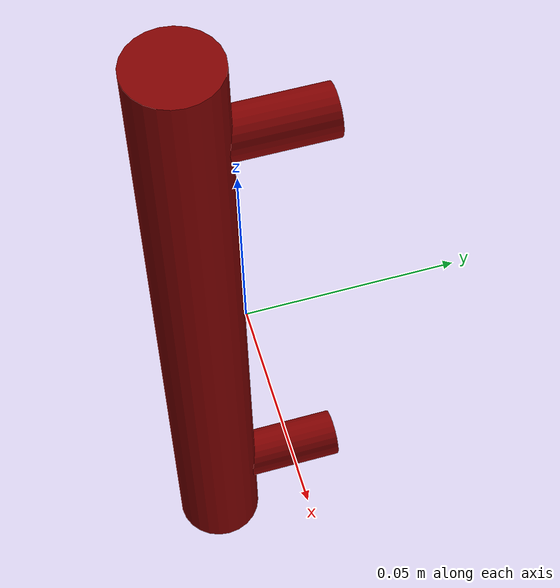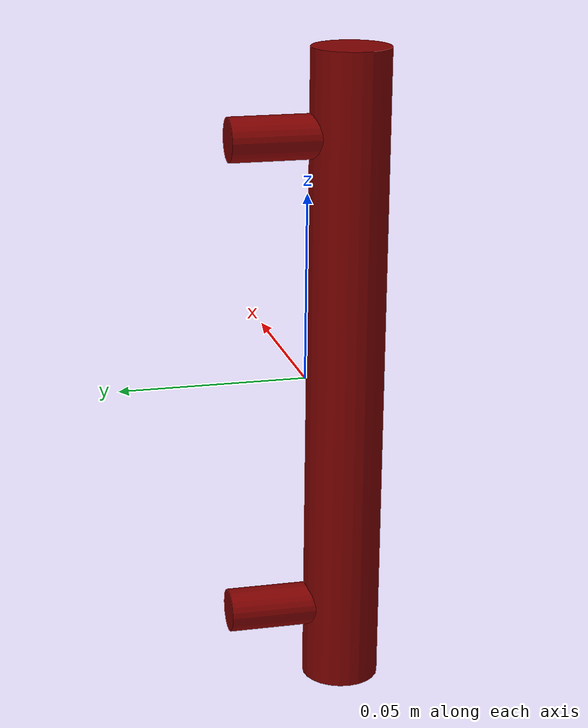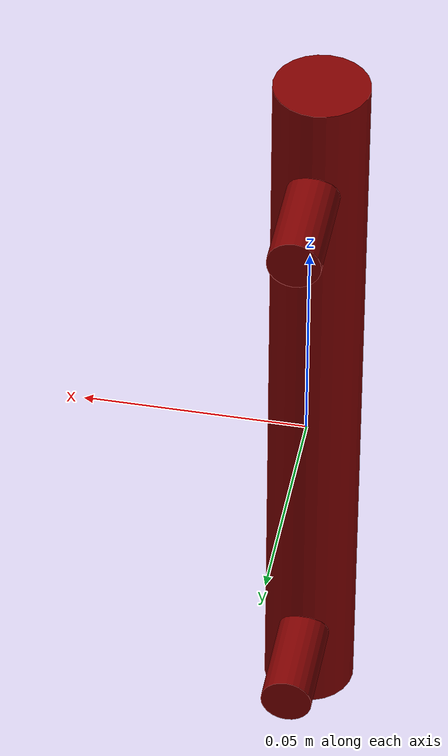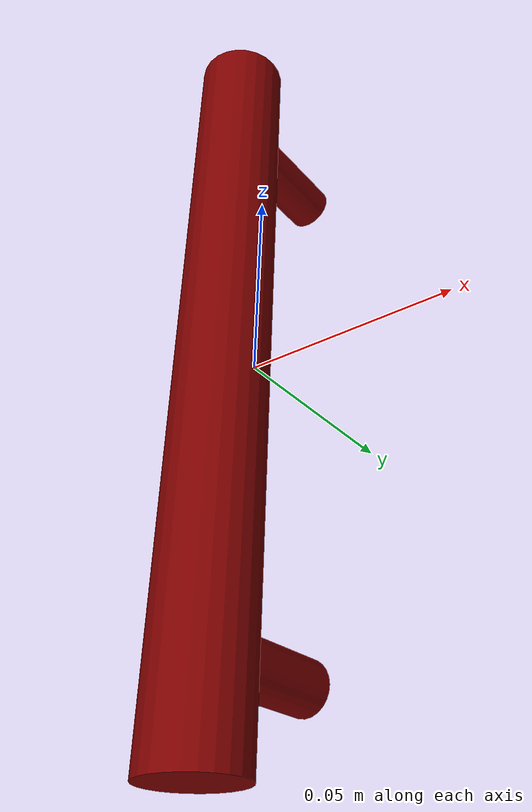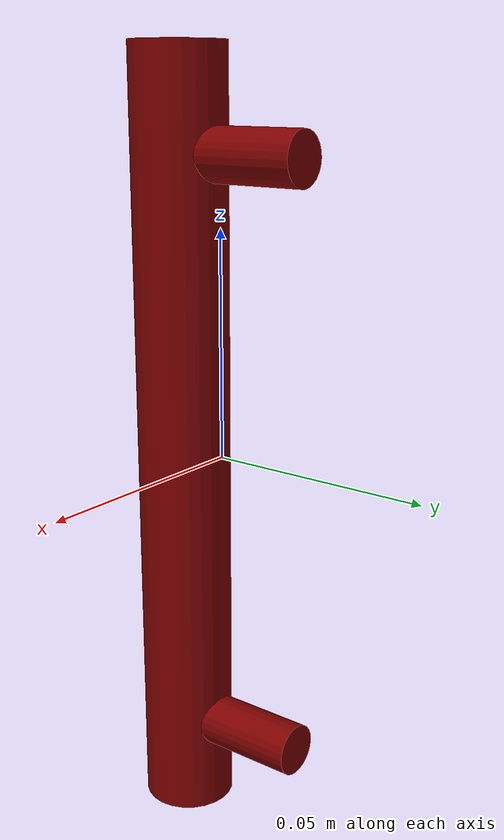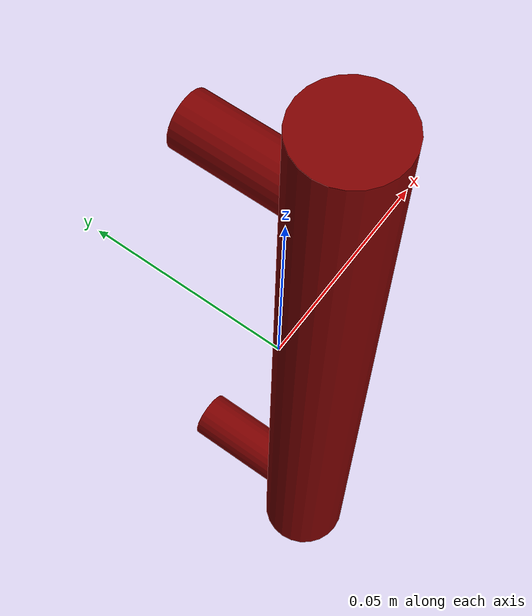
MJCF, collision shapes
<?xml version='1.0' encoding='UTF-8'?>
<mujoco model="model">
  <option timestep="0.002" gravity="0.0 0.0 -9.81"/>
  <compiler angle="radian"/>
  <asset>
    <mesh file="visuals/CabinetHandle006.obj" name="CabinetHandle006_vis"/>
    <texture file="visuals/T_BC001.png" name="tex" type="2d"/>
    <material name="mat" rgba="1 1 1 1.0" texture="tex" shininess="0.4472135901451111" specular="0.3103448502657381"/>
  </asset>
  <default>
    <default class="visual">
      <geom conaffinity="0" contype="0" group="1" type="mesh"/>
    </default>
    <default class="collision">
      <geom group="0" rgba="0.5 0 0 0.5" density="1.0" solref="0.004 1" solimp="0.998 0.998 0.001"/>
    </default>
    <default class="spawn">
      <geom group="0" rgba="1 1 1 0.5" contype="0" conaffinity="0"/>
      <site group="0" rgba="1 1 1 0.5"/>
    </default>
    <default class="region">
      <geom group="1" conaffinity="0" contype="0" rgba="0 1 0 0" mass="0"/>
    </default>
  </default>
  <worldbody>
    <body>
      <body name="object">
        <geom mesh="CabinetHandle006_vis" type="mesh" solimp="0.998 0.998 0.001" solref="0.001 1" friction="0.95 0.3 0.1" class="visual" material="mat"/>
        <geom type="cylinder" pos="0.0 -0.010914381593465805 0.0" size="0.010422824881970882 0.08738472312688828" quat="1.0 0.0 0.0 0.0" class="collision"/>
        <geom type="cylinder" pos="0.0 0.00600820267572999 0.06487763673067093" size="0.005828428082168102 0.014976910315454006" quat="0.7071067094802856 0.7071068286895752 0.0 0.0" class="collision"/>
        <geom type="cylinder" pos="0.0 0.006008201744407415 -0.06581848114728928" size="0.005828428082168102 0.014976909384131432" quat="0.7071067094802856 0.7071068286895752 0.0 0.0" class="collision"/>
        <geom class="region" name="reg_main" type="box" pos="-2.3283064365386963e-10 0.0 0.0" size="0.011066029615700246 0.021985111594200135 0.0889901647567749"/>
      </body>
    </body>
  </worldbody>
  <actuator/>
</mujoco>
